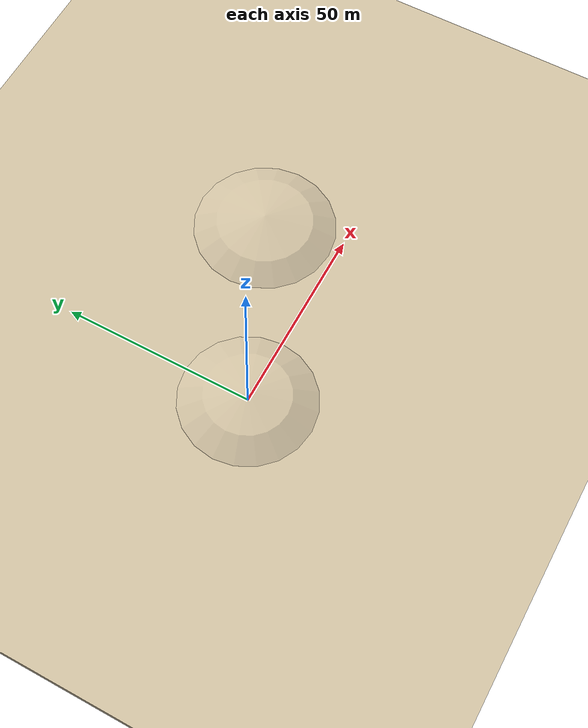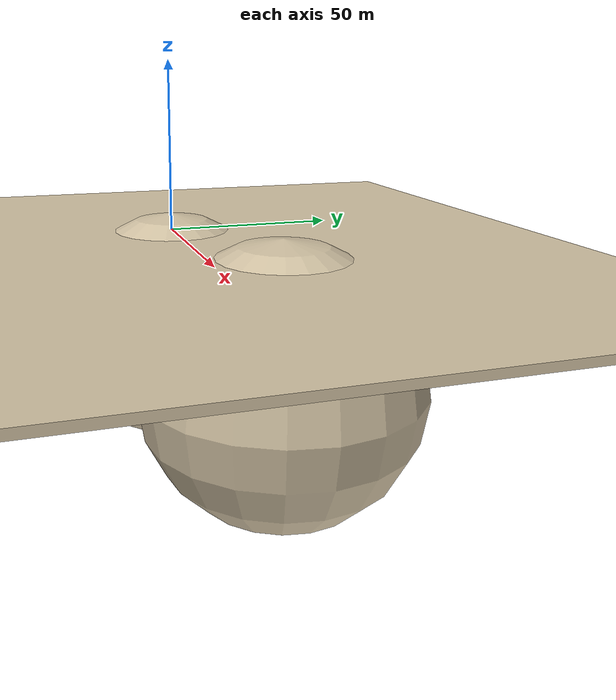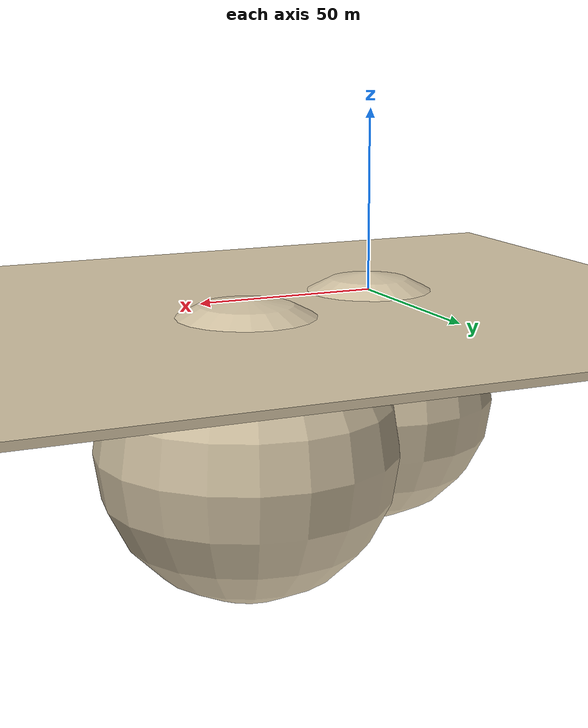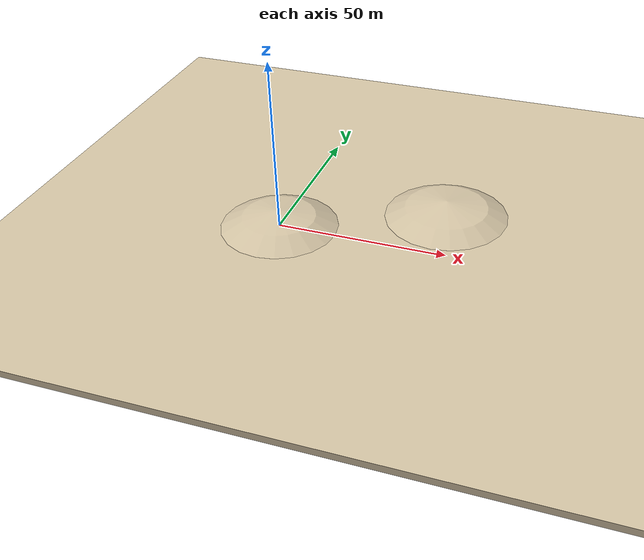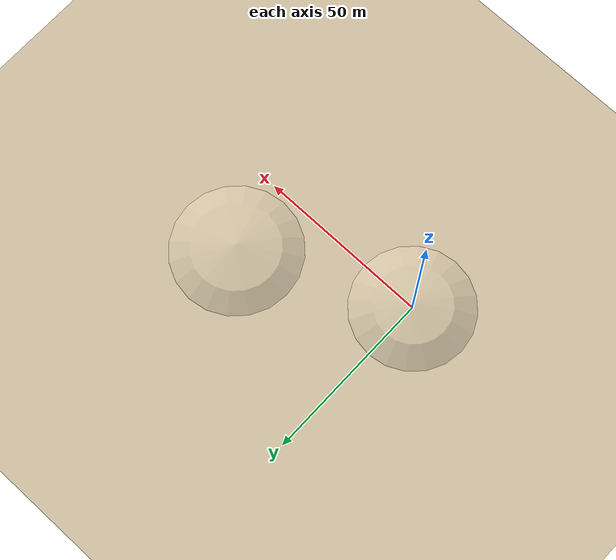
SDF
<?xml version="1.0"?>
<sdf version="1.7">

<world name="moon_world">

  <physics name="1ms" type="ignored">
    <max_step_size>0.001</max_step_size>
    <real_time_factor>1.0</real_time_factor>
  </physics>

  <plugin
    filename="gz-sim-physics-system"
    name="gz::sim::systems::Physics">
  </plugin>

  <plugin
    filename="gz-sim-user-commands-system"
    name="gz::sim::systems::UserCommands">
  </plugin>

  <plugin
    filename="gz-sim-scene-broadcaster-system"
    name="gz::sim::systems::SceneBroadcaster">
  </plugin>

  <plugin
    filename="gz-sim-sensors-system"
    name="gz::sim::systems::Sensors">
  </plugin>

  <plugin
    filename="gz-sim-imu-system"
    name="gz::sim::systems::Imu">
  </plugin>

  <light type="directional" name="sun">
    <cast_shadows>true</cast_shadows>
    <pose>0 0 100 0 0 0</pose>
    <diffuse>0.95 0.90 0.80 1</diffuse>
    <specular>0.2 0.2 0.2 1</specular>
    <direction>-0.08 0.03 -1</direction>
  </light>

  <!-- Main Ground -->
  <model name="ground">

    <static>true</static>

    <link name="link">

      <collision name="collision">
        <geometry>
          <box>
            <size>500 500 2</size>
          </box>
        </geometry>
        <pose>0 0 -1 0 0 0</pose>
      </collision>

      <visual name="visual">
        <geometry>
          <box>
            <size>500 500 2</size>
          </box>
        </geometry>

        <material>
          <ambient>0.72 0.66 0.55 1</ambient>
          <diffuse>0.82 0.76 0.64 1</diffuse>
        </material>

        <pose>0 0 -1 0 0 0</pose>

      </visual>

    </link>

  </model>

  <!-- Dune 1 -->
  <model name="dune1">

    <static>true</static>
    <pose>0 0 -30 0 0 0</pose>

    <link name="link">

      <collision name="collision">
        <geometry>
          <sphere>
            <radius>35</radius>
          </sphere>
        </geometry>
      </collision>

      <visual name="visual">
        <geometry>
          <sphere>
            <radius>35</radius>
          </sphere>
        </geometry>

        <material>
          <ambient>0.76 0.70 0.58 1</ambient>
          <diffuse>0.82 0.76 0.64 1</diffuse>
        </material>

      </visual>

    </link>

  </model>

  <!-- Dune 2 -->
  <model name="dune2">

    <static>true</static>
    <pose>45 20 -35 0 0 0</pose>

    <link name="link">

      <collision name="collision">
        <geometry>
          <sphere>
            <radius>40</radius>
          </sphere>
        </geometry>
      </collision>

      <visual name="visual">
        <geometry>
          <sphere>
            <radius>40</radius>
          </sphere>
        </geometry>

        <material>
          <ambient>0.76 0.70 0.58 1</ambient>
          <diffuse>0.82 0.76 0.64 1</diffuse>
        </material>

      </visual>

    </link>

  </model>

</world>

</sdf>
